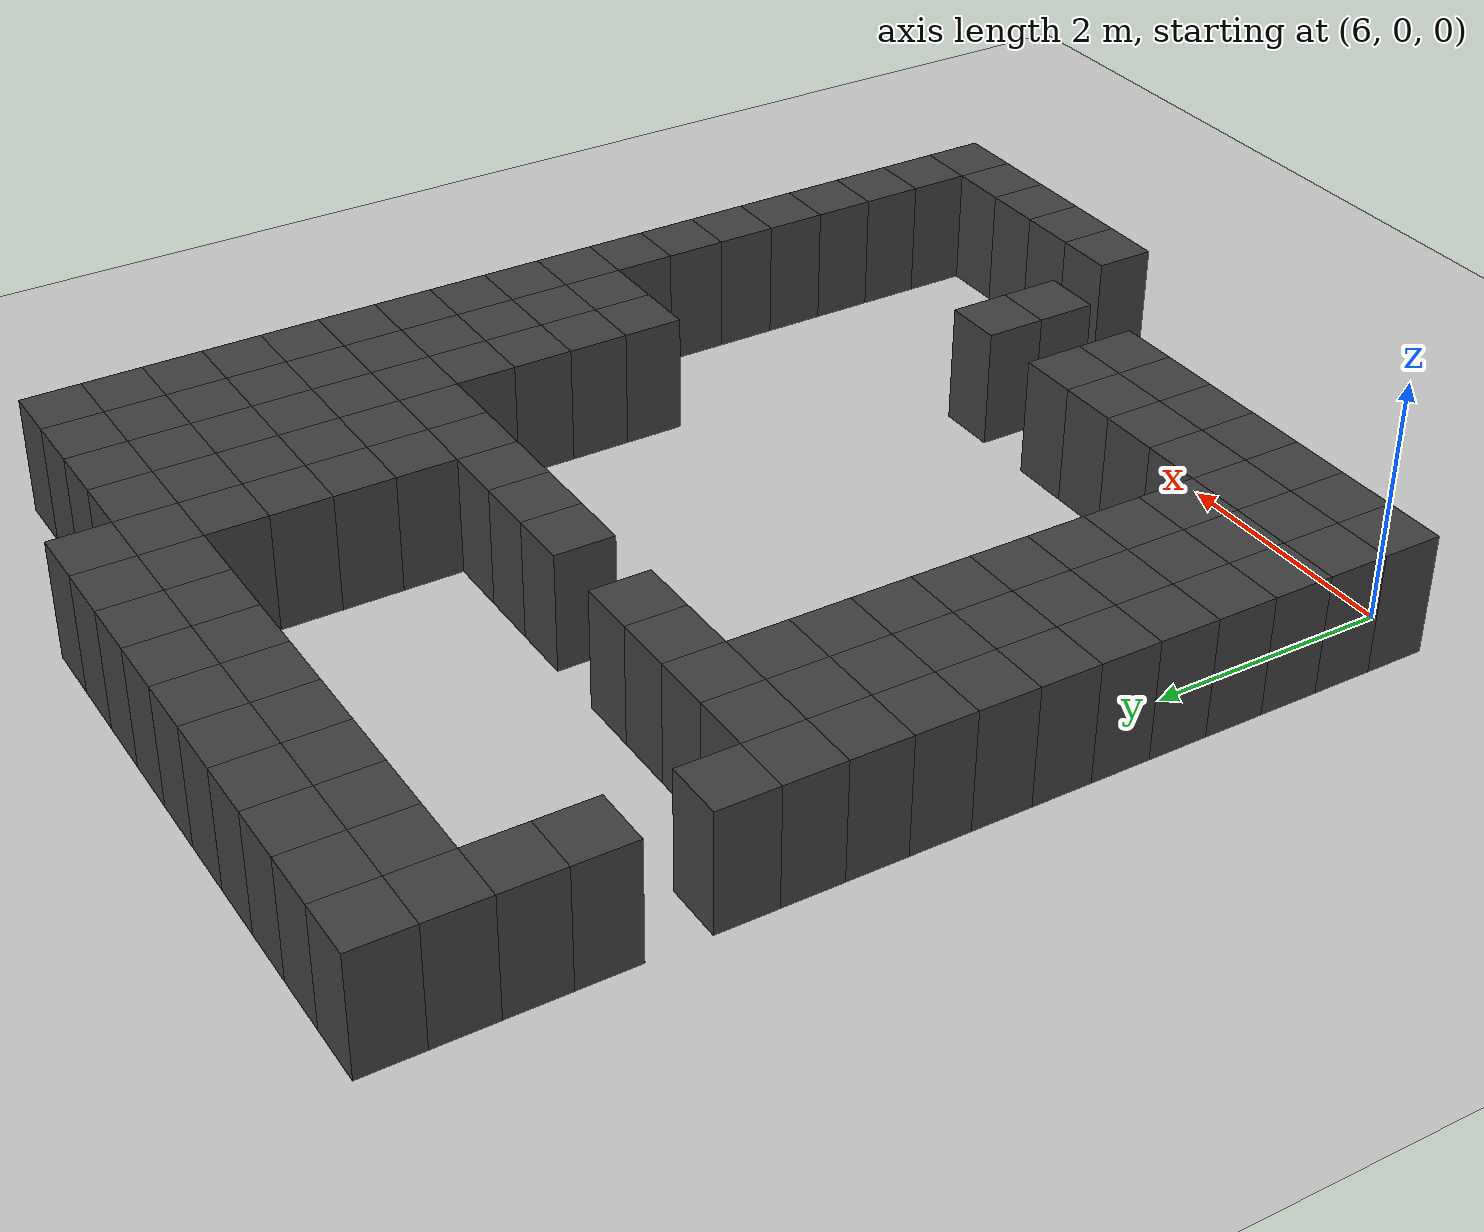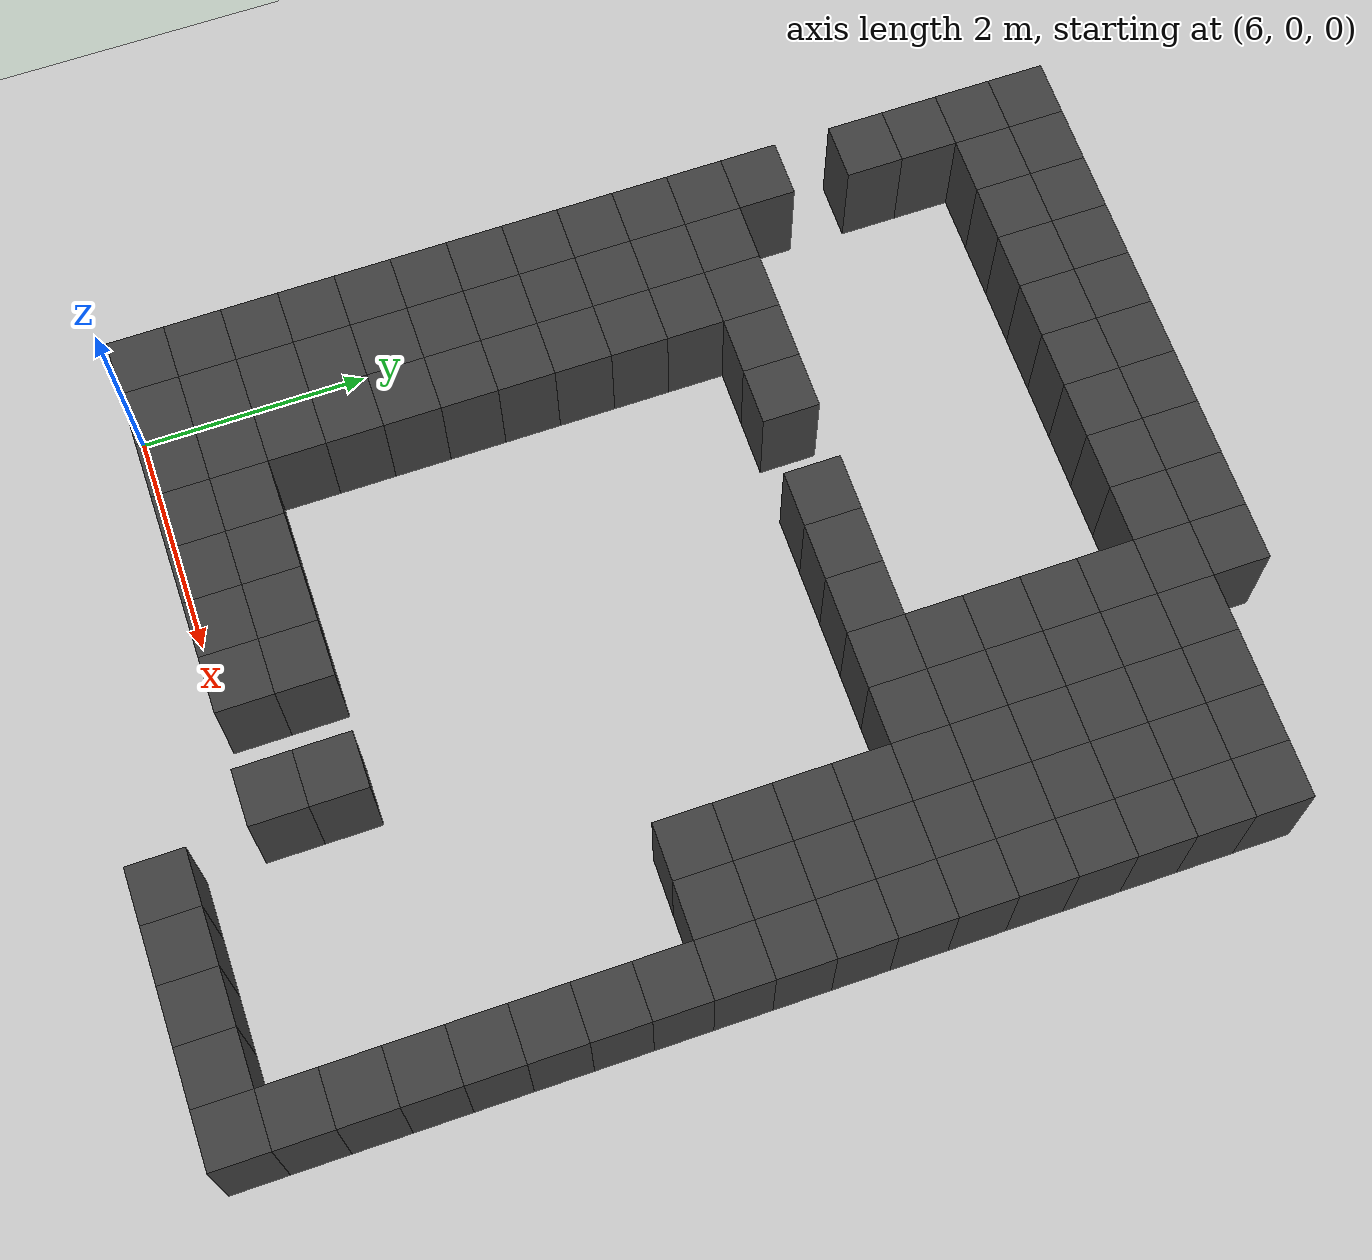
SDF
<sdf version="1.7">
 <world name="map_13364">
  <model name="ground_plane">
   <static>true</static>
   <link name="link">
    <collision name="collision">
     <geometry><plane><normal>0 0 1</normal><size>200 200</size></plane></geometry>
    </collision>
    <visual name="visual">
     <geometry><plane><normal>0 0 1</normal><size>200 200</size></plane></geometry>
     <material><ambient>0.8 0.8 0.8 1</ambient><diffuse>0.8 0.8 0.8 1</diffuse></material>
    </visual>
   </link>
  </model>
  <model name="maze_environment">
   <static>true</static>
   <link name="wall_397">
    <pose>5.750 8.250 0.500 0 0 0</pose>
    <collision name="col"><geometry><box><size>0.5 0.5 1.0</size></box></geometry></collision>
    <visual name="vis">
     <geometry><box><size>0.5 0.5 1.0</size></box></geometry>
     <material><ambient>0.15 0.15 0.15 1</ambient><diffuse>0.25 0.25 0.25 1</diffuse></material>
    </visual>
   </link>
   <link name="wall_398">
    <pose>6.250 8.250 0.500 0 0 0</pose>
    <collision name="col"><geometry><box><size>0.5 0.5 1.0</size></box></geometry></collision>
    <visual name="vis">
     <geometry><box><size>0.5 0.5 1.0</size></box></geometry>
     <material><ambient>0.15 0.15 0.15 1</ambient><diffuse>0.25 0.25 0.25 1</diffuse></material>
    </visual>
   </link>
   <link name="wall_399">
    <pose>6.750 8.250 0.500 0 0 0</pose>
    <collision name="col"><geometry><box><size>0.5 0.5 1.0</size></box></geometry></collision>
    <visual name="vis">
     <geometry><box><size>0.5 0.5 1.0</size></box></geometry>
     <material><ambient>0.15 0.15 0.15 1</ambient><diffuse>0.25 0.25 0.25 1</diffuse></material>
    </visual>
   </link>
   <link name="wall_400">
    <pose>7.250 8.250 0.500 0 0 0</pose>
    <collision name="col"><geometry><box><size>0.5 0.5 1.0</size></box></geometry></collision>
    <visual name="vis">
     <geometry><box><size>0.5 0.5 1.0</size></box></geometry>
     <material><ambient>0.15 0.15 0.15 1</ambient><diffuse>0.25 0.25 0.25 1</diffuse></material>
    </visual>
   </link>
   <link name="wall_401">
    <pose>7.750 8.250 0.500 0 0 0</pose>
    <collision name="col"><geometry><box><size>0.5 0.5 1.0</size></box></geometry></collision>
    <visual name="vis">
     <geometry><box><size>0.5 0.5 1.0</size></box></geometry>
     <material><ambient>0.15 0.15 0.15 1</ambient><diffuse>0.25 0.25 0.25 1</diffuse></material>
    </visual>
   </link>
   <link name="wall_402">
    <pose>8.250 8.250 0.500 0 0 0</pose>
    <collision name="col"><geometry><box><size>0.5 0.5 1.0</size></box></geometry></collision>
    <visual name="vis">
     <geometry><box><size>0.5 0.5 1.0</size></box></geometry>
     <material><ambient>0.15 0.15 0.15 1</ambient><diffuse>0.25 0.25 0.25 1</diffuse></material>
    </visual>
   </link>
   <link name="wall_403">
    <pose>8.750 8.250 0.500 0 0 0</pose>
    <collision name="col"><geometry><box><size>0.5 0.5 1.0</size></box></geometry></collision>
    <visual name="vis">
     <geometry><box><size>0.5 0.5 1.0</size></box></geometry>
     <material><ambient>0.15 0.15 0.15 1</ambient><diffuse>0.25 0.25 0.25 1</diffuse></material>
    </visual>
   </link>
   <link name="wall_404">
    <pose>9.250 8.250 0.500 0 0 0</pose>
    <collision name="col"><geometry><box><size>0.5 0.5 1.0</size></box></geometry></collision>
    <visual name="vis">
     <geometry><box><size>0.5 0.5 1.0</size></box></geometry>
     <material><ambient>0.15 0.15 0.15 1</ambient><diffuse>0.25 0.25 0.25 1</diffuse></material>
    </visual>
   </link>
   <link name="wall_405">
    <pose>9.750 8.250 0.500 0 0 0</pose>
    <collision name="col"><geometry><box><size>0.5 0.5 1.0</size></box></geometry></collision>
    <visual name="vis">
     <geometry><box><size>0.5 0.5 1.0</size></box></geometry>
     <material><ambient>0.15 0.15 0.15 1</ambient><diffuse>0.25 0.25 0.25 1</diffuse></material>
    </visual>
   </link>
   <link name="wall_406">
    <pose>10.250 8.250 0.500 0 0 0</pose>
    <collision name="col"><geometry><box><size>0.5 0.5 1.0</size></box></geometry></collision>
    <visual name="vis">
     <geometry><box><size>0.5 0.5 1.0</size></box></geometry>
     <material><ambient>0.15 0.15 0.15 1</ambient><diffuse>0.25 0.25 0.25 1</diffuse></material>
    </visual>
   </link>
   <link name="wall_446">
    <pose>5.750 7.750 0.500 0 0 0</pose>
    <collision name="col"><geometry><box><size>0.5 0.5 1.0</size></box></geometry></collision>
    <visual name="vis">
     <geometry><box><size>0.5 0.5 1.0</size></box></geometry>
     <material><ambient>0.15 0.15 0.15 1</ambient><diffuse>0.25 0.25 0.25 1</diffuse></material>
    </visual>
   </link>
   <link name="wall_447">
    <pose>6.250 7.750 0.500 0 0 0</pose>
    <collision name="col"><geometry><box><size>0.5 0.5 1.0</size></box></geometry></collision>
    <visual name="vis">
     <geometry><box><size>0.5 0.5 1.0</size></box></geometry>
     <material><ambient>0.15 0.15 0.15 1</ambient><diffuse>0.25 0.25 0.25 1</diffuse></material>
    </visual>
   </link>
   <link name="wall_448">
    <pose>6.750 7.750 0.500 0 0 0</pose>
    <collision name="col"><geometry><box><size>0.5 0.5 1.0</size></box></geometry></collision>
    <visual name="vis">
     <geometry><box><size>0.5 0.5 1.0</size></box></geometry>
     <material><ambient>0.15 0.15 0.15 1</ambient><diffuse>0.25 0.25 0.25 1</diffuse></material>
    </visual>
   </link>
   <link name="wall_449">
    <pose>7.250 7.750 0.500 0 0 0</pose>
    <collision name="col"><geometry><box><size>0.5 0.5 1.0</size></box></geometry></collision>
    <visual name="vis">
     <geometry><box><size>0.5 0.5 1.0</size></box></geometry>
     <material><ambient>0.15 0.15 0.15 1</ambient><diffuse>0.25 0.25 0.25 1</diffuse></material>
    </visual>
   </link>
   <link name="wall_450">
    <pose>7.750 7.750 0.500 0 0 0</pose>
    <collision name="col"><geometry><box><size>0.5 0.5 1.0</size></box></geometry></collision>
    <visual name="vis">
     <geometry><box><size>0.5 0.5 1.0</size></box></geometry>
     <material><ambient>0.15 0.15 0.15 1</ambient><diffuse>0.25 0.25 0.25 1</diffuse></material>
    </visual>
   </link>
   <link name="wall_451">
    <pose>8.250 7.750 0.500 0 0 0</pose>
    <collision name="col"><geometry><box><size>0.5 0.5 1.0</size></box></geometry></collision>
    <visual name="vis">
     <geometry><box><size>0.5 0.5 1.0</size></box></geometry>
     <material><ambient>0.15 0.15 0.15 1</ambient><diffuse>0.25 0.25 0.25 1</diffuse></material>
    </visual>
   </link>
   <link name="wall_452">
    <pose>8.750 7.750 0.500 0 0 0</pose>
    <collision name="col"><geometry><box><size>0.5 0.5 1.0</size></box></geometry></collision>
    <visual name="vis">
     <geometry><box><size>0.5 0.5 1.0</size></box></geometry>
     <material><ambient>0.15 0.15 0.15 1</ambient><diffuse>0.25 0.25 0.25 1</diffuse></material>
    </visual>
   </link>
   <link name="wall_453">
    <pose>9.250 7.750 0.500 0 0 0</pose>
    <collision name="col"><geometry><box><size>0.5 0.5 1.0</size></box></geometry></collision>
    <visual name="vis">
     <geometry><box><size>0.5 0.5 1.0</size></box></geometry>
     <material><ambient>0.15 0.15 0.15 1</ambient><diffuse>0.25 0.25 0.25 1</diffuse></material>
    </visual>
   </link>
   <link name="wall_454">
    <pose>9.750 7.750 0.500 0 0 0</pose>
    <collision name="col"><geometry><box><size>0.5 0.5 1.0</size></box></geometry></collision>
    <visual name="vis">
     <geometry><box><size>0.5 0.5 1.0</size></box></geometry>
     <material><ambient>0.15 0.15 0.15 1</ambient><diffuse>0.25 0.25 0.25 1</diffuse></material>
    </visual>
   </link>
   <link name="wall_455">
    <pose>10.250 7.750 0.500 0 0 0</pose>
    <collision name="col"><geometry><box><size>0.5 0.5 1.0</size></box></geometry></collision>
    <visual name="vis">
     <geometry><box><size>0.5 0.5 1.0</size></box></geometry>
     <material><ambient>0.15 0.15 0.15 1</ambient><diffuse>0.25 0.25 0.25 1</diffuse></material>
    </visual>
   </link>
   <link name="wall_456">
    <pose>10.750 7.750 0.500 0 0 0</pose>
    <collision name="col"><geometry><box><size>0.5 0.5 1.0</size></box></geometry></collision>
    <visual name="vis">
     <geometry><box><size>0.5 0.5 1.0</size></box></geometry>
     <material><ambient>0.15 0.15 0.15 1</ambient><diffuse>0.25 0.25 0.25 1</diffuse></material>
    </visual>
   </link>
   <link name="wall_457">
    <pose>11.250 7.750 0.500 0 0 0</pose>
    <collision name="col"><geometry><box><size>0.5 0.5 1.0</size></box></geometry></collision>
    <visual name="vis">
     <geometry><box><size>0.5 0.5 1.0</size></box></geometry>
     <material><ambient>0.15 0.15 0.15 1</ambient><diffuse>0.25 0.25 0.25 1</diffuse></material>
    </visual>
   </link>
   <link name="wall_458">
    <pose>11.750 7.750 0.500 0 0 0</pose>
    <collision name="col"><geometry><box><size>0.5 0.5 1.0</size></box></geometry></collision>
    <visual name="vis">
     <geometry><box><size>0.5 0.5 1.0</size></box></geometry>
     <material><ambient>0.15 0.15 0.15 1</ambient><diffuse>0.25 0.25 0.25 1</diffuse></material>
    </visual>
   </link>
   <link name="wall_459">
    <pose>12.250 7.750 0.500 0 0 0</pose>
    <collision name="col"><geometry><box><size>0.5 0.5 1.0</size></box></geometry></collision>
    <visual name="vis">
     <geometry><box><size>0.5 0.5 1.0</size></box></geometry>
     <material><ambient>0.15 0.15 0.15 1</ambient><diffuse>0.25 0.25 0.25 1</diffuse></material>
    </visual>
   </link>
   <link name="wall_495">
    <pose>5.750 7.250 0.500 0 0 0</pose>
    <collision name="col"><geometry><box><size>0.5 0.5 1.0</size></box></geometry></collision>
    <visual name="vis">
     <geometry><box><size>0.5 0.5 1.0</size></box></geometry>
     <material><ambient>0.15 0.15 0.15 1</ambient><diffuse>0.25 0.25 0.25 1</diffuse></material>
    </visual>
   </link>
   <link name="wall_496">
    <pose>10.250 7.250 0.500 0 0 0</pose>
    <collision name="col"><geometry><box><size>0.5 0.5 1.0</size></box></geometry></collision>
    <visual name="vis">
     <geometry><box><size>0.5 0.5 1.0</size></box></geometry>
     <material><ambient>0.15 0.15 0.15 1</ambient><diffuse>0.25 0.25 0.25 1</diffuse></material>
    </visual>
   </link>
   <link name="wall_497">
    <pose>10.750 7.250 0.500 0 0 0</pose>
    <collision name="col"><geometry><box><size>0.5 0.5 1.0</size></box></geometry></collision>
    <visual name="vis">
     <geometry><box><size>0.5 0.5 1.0</size></box></geometry>
     <material><ambient>0.15 0.15 0.15 1</ambient><diffuse>0.25 0.25 0.25 1</diffuse></material>
    </visual>
   </link>
   <link name="wall_498">
    <pose>11.250 7.250 0.500 0 0 0</pose>
    <collision name="col"><geometry><box><size>0.5 0.5 1.0</size></box></geometry></collision>
    <visual name="vis">
     <geometry><box><size>0.5 0.5 1.0</size></box></geometry>
     <material><ambient>0.15 0.15 0.15 1</ambient><diffuse>0.25 0.25 0.25 1</diffuse></material>
    </visual>
   </link>
   <link name="wall_499">
    <pose>11.750 7.250 0.500 0 0 0</pose>
    <collision name="col"><geometry><box><size>0.5 0.5 1.0</size></box></geometry></collision>
    <visual name="vis">
     <geometry><box><size>0.5 0.5 1.0</size></box></geometry>
     <material><ambient>0.15 0.15 0.15 1</ambient><diffuse>0.25 0.25 0.25 1</diffuse></material>
    </visual>
   </link>
   <link name="wall_500">
    <pose>12.250 7.250 0.500 0 0 0</pose>
    <collision name="col"><geometry><box><size>0.5 0.5 1.0</size></box></geometry></collision>
    <visual name="vis">
     <geometry><box><size>0.5 0.5 1.0</size></box></geometry>
     <material><ambient>0.15 0.15 0.15 1</ambient><diffuse>0.25 0.25 0.25 1</diffuse></material>
    </visual>
   </link>
   <link name="wall_530">
    <pose>5.750 6.750 0.500 0 0 0</pose>
    <collision name="col"><geometry><box><size>0.5 0.5 1.0</size></box></geometry></collision>
    <visual name="vis">
     <geometry><box><size>0.5 0.5 1.0</size></box></geometry>
     <material><ambient>0.15 0.15 0.15 1</ambient><diffuse>0.25 0.25 0.25 1</diffuse></material>
    </visual>
   </link>
   <link name="wall_531">
    <pose>10.250 6.750 0.500 0 0 0</pose>
    <collision name="col"><geometry><box><size>0.5 0.5 1.0</size></box></geometry></collision>
    <visual name="vis">
     <geometry><box><size>0.5 0.5 1.0</size></box></geometry>
     <material><ambient>0.15 0.15 0.15 1</ambient><diffuse>0.25 0.25 0.25 1</diffuse></material>
    </visual>
   </link>
   <link name="wall_532">
    <pose>10.750 6.750 0.500 0 0 0</pose>
    <collision name="col"><geometry><box><size>0.5 0.5 1.0</size></box></geometry></collision>
    <visual name="vis">
     <geometry><box><size>0.5 0.5 1.0</size></box></geometry>
     <material><ambient>0.15 0.15 0.15 1</ambient><diffuse>0.25 0.25 0.25 1</diffuse></material>
    </visual>
   </link>
   <link name="wall_533">
    <pose>11.250 6.750 0.500 0 0 0</pose>
    <collision name="col"><geometry><box><size>0.5 0.5 1.0</size></box></geometry></collision>
    <visual name="vis">
     <geometry><box><size>0.5 0.5 1.0</size></box></geometry>
     <material><ambient>0.15 0.15 0.15 1</ambient><diffuse>0.25 0.25 0.25 1</diffuse></material>
    </visual>
   </link>
   <link name="wall_534">
    <pose>11.750 6.750 0.500 0 0 0</pose>
    <collision name="col"><geometry><box><size>0.5 0.5 1.0</size></box></geometry></collision>
    <visual name="vis">
     <geometry><box><size>0.5 0.5 1.0</size></box></geometry>
     <material><ambient>0.15 0.15 0.15 1</ambient><diffuse>0.25 0.25 0.25 1</diffuse></material>
    </visual>
   </link>
   <link name="wall_535">
    <pose>12.250 6.750 0.500 0 0 0</pose>
    <collision name="col"><geometry><box><size>0.5 0.5 1.0</size></box></geometry></collision>
    <visual name="vis">
     <geometry><box><size>0.5 0.5 1.0</size></box></geometry>
     <material><ambient>0.15 0.15 0.15 1</ambient><diffuse>0.25 0.25 0.25 1</diffuse></material>
    </visual>
   </link>
   <link name="wall_563">
    <pose>10.250 6.250 0.500 0 0 0</pose>
    <collision name="col"><geometry><box><size>0.5 0.5 1.0</size></box></geometry></collision>
    <visual name="vis">
     <geometry><box><size>0.5 0.5 1.0</size></box></geometry>
     <material><ambient>0.15 0.15 0.15 1</ambient><diffuse>0.25 0.25 0.25 1</diffuse></material>
    </visual>
   </link>
   <link name="wall_564">
    <pose>10.750 6.250 0.500 0 0 0</pose>
    <collision name="col"><geometry><box><size>0.5 0.5 1.0</size></box></geometry></collision>
    <visual name="vis">
     <geometry><box><size>0.5 0.5 1.0</size></box></geometry>
     <material><ambient>0.15 0.15 0.15 1</ambient><diffuse>0.25 0.25 0.25 1</diffuse></material>
    </visual>
   </link>
   <link name="wall_565">
    <pose>11.250 6.250 0.500 0 0 0</pose>
    <collision name="col"><geometry><box><size>0.5 0.5 1.0</size></box></geometry></collision>
    <visual name="vis">
     <geometry><box><size>0.5 0.5 1.0</size></box></geometry>
     <material><ambient>0.15 0.15 0.15 1</ambient><diffuse>0.25 0.25 0.25 1</diffuse></material>
    </visual>
   </link>
   <link name="wall_566">
    <pose>11.750 6.250 0.500 0 0 0</pose>
    <collision name="col"><geometry><box><size>0.5 0.5 1.0</size></box></geometry></collision>
    <visual name="vis">
     <geometry><box><size>0.5 0.5 1.0</size></box></geometry>
     <material><ambient>0.15 0.15 0.15 1</ambient><diffuse>0.25 0.25 0.25 1</diffuse></material>
    </visual>
   </link>
   <link name="wall_567">
    <pose>12.250 6.250 0.500 0 0 0</pose>
    <collision name="col"><geometry><box><size>0.5 0.5 1.0</size></box></geometry></collision>
    <visual name="vis">
     <geometry><box><size>0.5 0.5 1.0</size></box></geometry>
     <material><ambient>0.15 0.15 0.15 1</ambient><diffuse>0.25 0.25 0.25 1</diffuse></material>
    </visual>
   </link>
   <link name="wall_589">
    <pose>5.750 5.750 0.500 0 0 0</pose>
    <collision name="col"><geometry><box><size>0.5 0.5 1.0</size></box></geometry></collision>
    <visual name="vis">
     <geometry><box><size>0.5 0.5 1.0</size></box></geometry>
     <material><ambient>0.15 0.15 0.15 1</ambient><diffuse>0.25 0.25 0.25 1</diffuse></material>
    </visual>
   </link>
   <link name="wall_590">
    <pose>10.250 5.750 0.500 0 0 0</pose>
    <collision name="col"><geometry><box><size>0.5 0.5 1.0</size></box></geometry></collision>
    <visual name="vis">
     <geometry><box><size>0.5 0.5 1.0</size></box></geometry>
     <material><ambient>0.15 0.15 0.15 1</ambient><diffuse>0.25 0.25 0.25 1</diffuse></material>
    </visual>
   </link>
   <link name="wall_591">
    <pose>10.750 5.750 0.500 0 0 0</pose>
    <collision name="col"><geometry><box><size>0.5 0.5 1.0</size></box></geometry></collision>
    <visual name="vis">
     <geometry><box><size>0.5 0.5 1.0</size></box></geometry>
     <material><ambient>0.15 0.15 0.15 1</ambient><diffuse>0.25 0.25 0.25 1</diffuse></material>
    </visual>
   </link>
   <link name="wall_592">
    <pose>11.250 5.750 0.500 0 0 0</pose>
    <collision name="col"><geometry><box><size>0.5 0.5 1.0</size></box></geometry></collision>
    <visual name="vis">
     <geometry><box><size>0.5 0.5 1.0</size></box></geometry>
     <material><ambient>0.15 0.15 0.15 1</ambient><diffuse>0.25 0.25 0.25 1</diffuse></material>
    </visual>
   </link>
   <link name="wall_593">
    <pose>11.750 5.750 0.500 0 0 0</pose>
    <collision name="col"><geometry><box><size>0.5 0.5 1.0</size></box></geometry></collision>
    <visual name="vis">
     <geometry><box><size>0.5 0.5 1.0</size></box></geometry>
     <material><ambient>0.15 0.15 0.15 1</ambient><diffuse>0.25 0.25 0.25 1</diffuse></material>
    </visual>
   </link>
   <link name="wall_594">
    <pose>12.250 5.750 0.500 0 0 0</pose>
    <collision name="col"><geometry><box><size>0.5 0.5 1.0</size></box></geometry></collision>
    <visual name="vis">
     <geometry><box><size>0.5 0.5 1.0</size></box></geometry>
     <material><ambient>0.15 0.15 0.15 1</ambient><diffuse>0.25 0.25 0.25 1</diffuse></material>
    </visual>
   </link>
   <link name="wall_616">
    <pose>5.750 5.250 0.500 0 0 0</pose>
    <collision name="col"><geometry><box><size>0.5 0.5 1.0</size></box></geometry></collision>
    <visual name="vis">
     <geometry><box><size>0.5 0.5 1.0</size></box></geometry>
     <material><ambient>0.15 0.15 0.15 1</ambient><diffuse>0.25 0.25 0.25 1</diffuse></material>
    </visual>
   </link>
   <link name="wall_617">
    <pose>6.250 5.250 0.500 0 0 0</pose>
    <collision name="col"><geometry><box><size>0.5 0.5 1.0</size></box></geometry></collision>
    <visual name="vis">
     <geometry><box><size>0.5 0.5 1.0</size></box></geometry>
     <material><ambient>0.15 0.15 0.15 1</ambient><diffuse>0.25 0.25 0.25 1</diffuse></material>
    </visual>
   </link>
   <link name="wall_618">
    <pose>6.750 5.250 0.500 0 0 0</pose>
    <collision name="col"><geometry><box><size>0.5 0.5 1.0</size></box></geometry></collision>
    <visual name="vis">
     <geometry><box><size>0.5 0.5 1.0</size></box></geometry>
     <material><ambient>0.15 0.15 0.15 1</ambient><diffuse>0.25 0.25 0.25 1</diffuse></material>
    </visual>
   </link>
   <link name="wall_619">
    <pose>7.250 5.250 0.500 0 0 0</pose>
    <collision name="col"><geometry><box><size>0.5 0.5 1.0</size></box></geometry></collision>
    <visual name="vis">
     <geometry><box><size>0.5 0.5 1.0</size></box></geometry>
     <material><ambient>0.15 0.15 0.15 1</ambient><diffuse>0.25 0.25 0.25 1</diffuse></material>
    </visual>
   </link>
   <link name="wall_620">
    <pose>7.750 5.250 0.500 0 0 0</pose>
    <collision name="col"><geometry><box><size>0.5 0.5 1.0</size></box></geometry></collision>
    <visual name="vis">
     <geometry><box><size>0.5 0.5 1.0</size></box></geometry>
     <material><ambient>0.15 0.15 0.15 1</ambient><diffuse>0.25 0.25 0.25 1</diffuse></material>
    </visual>
   </link>
   <link name="wall_621">
    <pose>8.750 5.250 0.500 0 0 0</pose>
    <collision name="col"><geometry><box><size>0.5 0.5 1.0</size></box></geometry></collision>
    <visual name="vis">
     <geometry><box><size>0.5 0.5 1.0</size></box></geometry>
     <material><ambient>0.15 0.15 0.15 1</ambient><diffuse>0.25 0.25 0.25 1</diffuse></material>
    </visual>
   </link>
   <link name="wall_622">
    <pose>9.250 5.250 0.500 0 0 0</pose>
    <collision name="col"><geometry><box><size>0.5 0.5 1.0</size></box></geometry></collision>
    <visual name="vis">
     <geometry><box><size>0.5 0.5 1.0</size></box></geometry>
     <material><ambient>0.15 0.15 0.15 1</ambient><diffuse>0.25 0.25 0.25 1</diffuse></material>
    </visual>
   </link>
   <link name="wall_623">
    <pose>9.750 5.250 0.500 0 0 0</pose>
    <collision name="col"><geometry><box><size>0.5 0.5 1.0</size></box></geometry></collision>
    <visual name="vis">
     <geometry><box><size>0.5 0.5 1.0</size></box></geometry>
     <material><ambient>0.15 0.15 0.15 1</ambient><diffuse>0.25 0.25 0.25 1</diffuse></material>
    </visual>
   </link>
   <link name="wall_624">
    <pose>10.250 5.250 0.500 0 0 0</pose>
    <collision name="col"><geometry><box><size>0.5 0.5 1.0</size></box></geometry></collision>
    <visual name="vis">
     <geometry><box><size>0.5 0.5 1.0</size></box></geometry>
     <material><ambient>0.15 0.15 0.15 1</ambient><diffuse>0.25 0.25 0.25 1</diffuse></material>
    </visual>
   </link>
   <link name="wall_625">
    <pose>10.750 5.250 0.500 0 0 0</pose>
    <collision name="col"><geometry><box><size>0.5 0.5 1.0</size></box></geometry></collision>
    <visual name="vis">
     <geometry><box><size>0.5 0.5 1.0</size></box></geometry>
     <material><ambient>0.15 0.15 0.15 1</ambient><diffuse>0.25 0.25 0.25 1</diffuse></material>
    </visual>
   </link>
   <link name="wall_626">
    <pose>11.250 5.250 0.500 0 0 0</pose>
    <collision name="col"><geometry><box><size>0.5 0.5 1.0</size></box></geometry></collision>
    <visual name="vis">
     <geometry><box><size>0.5 0.5 1.0</size></box></geometry>
     <material><ambient>0.15 0.15 0.15 1</ambient><diffuse>0.25 0.25 0.25 1</diffuse></material>
    </visual>
   </link>
   <link name="wall_627">
    <pose>11.750 5.250 0.500 0 0 0</pose>
    <collision name="col"><geometry><box><size>0.5 0.5 1.0</size></box></geometry></collision>
    <visual name="vis">
     <geometry><box><size>0.5 0.5 1.0</size></box></geometry>
     <material><ambient>0.15 0.15 0.15 1</ambient><diffuse>0.25 0.25 0.25 1</diffuse></material>
    </visual>
   </link>
   <link name="wall_628">
    <pose>12.250 5.250 0.500 0 0 0</pose>
    <collision name="col"><geometry><box><size>0.5 0.5 1.0</size></box></geometry></collision>
    <visual name="vis">
     <geometry><box><size>0.5 0.5 1.0</size></box></geometry>
     <material><ambient>0.15 0.15 0.15 1</ambient><diffuse>0.25 0.25 0.25 1</diffuse></material>
    </visual>
   </link>
   <link name="wall_643">
    <pose>5.750 4.750 0.500 0 0 0</pose>
    <collision name="col"><geometry><box><size>0.5 0.5 1.0</size></box></geometry></collision>
    <visual name="vis">
     <geometry><box><size>0.5 0.5 1.0</size></box></geometry>
     <material><ambient>0.15 0.15 0.15 1</ambient><diffuse>0.25 0.25 0.25 1</diffuse></material>
    </visual>
   </link>
   <link name="wall_644">
    <pose>6.250 4.750 0.500 0 0 0</pose>
    <collision name="col"><geometry><box><size>0.5 0.5 1.0</size></box></geometry></collision>
    <visual name="vis">
     <geometry><box><size>0.5 0.5 1.0</size></box></geometry>
     <material><ambient>0.15 0.15 0.15 1</ambient><diffuse>0.25 0.25 0.25 1</diffuse></material>
    </visual>
   </link>
   <link name="wall_645">
    <pose>6.750 4.750 0.500 0 0 0</pose>
    <collision name="col"><geometry><box><size>0.5 0.5 1.0</size></box></geometry></collision>
    <visual name="vis">
     <geometry><box><size>0.5 0.5 1.0</size></box></geometry>
     <material><ambient>0.15 0.15 0.15 1</ambient><diffuse>0.25 0.25 0.25 1</diffuse></material>
    </visual>
   </link>
   <link name="wall_646">
    <pose>11.250 4.750 0.500 0 0 0</pose>
    <collision name="col"><geometry><box><size>0.5 0.5 1.0</size></box></geometry></collision>
    <visual name="vis">
     <geometry><box><size>0.5 0.5 1.0</size></box></geometry>
     <material><ambient>0.15 0.15 0.15 1</ambient><diffuse>0.25 0.25 0.25 1</diffuse></material>
    </visual>
   </link>
   <link name="wall_647">
    <pose>11.750 4.750 0.500 0 0 0</pose>
    <collision name="col"><geometry><box><size>0.5 0.5 1.0</size></box></geometry></collision>
    <visual name="vis">
     <geometry><box><size>0.5 0.5 1.0</size></box></geometry>
     <material><ambient>0.15 0.15 0.15 1</ambient><diffuse>0.25 0.25 0.25 1</diffuse></material>
    </visual>
   </link>
   <link name="wall_648">
    <pose>12.250 4.750 0.500 0 0 0</pose>
    <collision name="col"><geometry><box><size>0.5 0.5 1.0</size></box></geometry></collision>
    <visual name="vis">
     <geometry><box><size>0.5 0.5 1.0</size></box></geometry>
     <material><ambient>0.15 0.15 0.15 1</ambient><diffuse>0.25 0.25 0.25 1</diffuse></material>
    </visual>
   </link>
   <link name="wall_670">
    <pose>5.750 4.250 0.500 0 0 0</pose>
    <collision name="col"><geometry><box><size>0.5 0.5 1.0</size></box></geometry></collision>
    <visual name="vis">
     <geometry><box><size>0.5 0.5 1.0</size></box></geometry>
     <material><ambient>0.15 0.15 0.15 1</ambient><diffuse>0.25 0.25 0.25 1</diffuse></material>
    </visual>
   </link>
   <link name="wall_671">
    <pose>6.250 4.250 0.500 0 0 0</pose>
    <collision name="col"><geometry><box><size>0.5 0.5 1.0</size></box></geometry></collision>
    <visual name="vis">
     <geometry><box><size>0.5 0.5 1.0</size></box></geometry>
     <material><ambient>0.15 0.15 0.15 1</ambient><diffuse>0.25 0.25 0.25 1</diffuse></material>
    </visual>
   </link>
   <link name="wall_672">
    <pose>6.750 4.250 0.500 0 0 0</pose>
    <collision name="col"><geometry><box><size>0.5 0.5 1.0</size></box></geometry></collision>
    <visual name="vis">
     <geometry><box><size>0.5 0.5 1.0</size></box></geometry>
     <material><ambient>0.15 0.15 0.15 1</ambient><diffuse>0.25 0.25 0.25 1</diffuse></material>
    </visual>
   </link>
   <link name="wall_673">
    <pose>11.250 4.250 0.500 0 0 0</pose>
    <collision name="col"><geometry><box><size>0.5 0.5 1.0</size></box></geometry></collision>
    <visual name="vis">
     <geometry><box><size>0.5 0.5 1.0</size></box></geometry>
     <material><ambient>0.15 0.15 0.15 1</ambient><diffuse>0.25 0.25 0.25 1</diffuse></material>
    </visual>
   </link>
   <link name="wall_674">
    <pose>11.750 4.250 0.500 0 0 0</pose>
    <collision name="col"><geometry><box><size>0.5 0.5 1.0</size></box></geometry></collision>
    <visual name="vis">
     <geometry><box><size>0.5 0.5 1.0</size></box></geometry>
     <material><ambient>0.15 0.15 0.15 1</ambient><diffuse>0.25 0.25 0.25 1</diffuse></material>
    </visual>
   </link>
   <link name="wall_675">
    <pose>12.250 4.250 0.500 0 0 0</pose>
    <collision name="col"><geometry><box><size>0.5 0.5 1.0</size></box></geometry></collision>
    <visual name="vis">
     <geometry><box><size>0.5 0.5 1.0</size></box></geometry>
     <material><ambient>0.15 0.15 0.15 1</ambient><diffuse>0.25 0.25 0.25 1</diffuse></material>
    </visual>
   </link>
   <link name="wall_702">
    <pose>5.750 3.750 0.500 0 0 0</pose>
    <collision name="col"><geometry><box><size>0.5 0.5 1.0</size></box></geometry></collision>
    <visual name="vis">
     <geometry><box><size>0.5 0.5 1.0</size></box></geometry>
     <material><ambient>0.15 0.15 0.15 1</ambient><diffuse>0.25 0.25 0.25 1</diffuse></material>
    </visual>
   </link>
   <link name="wall_703">
    <pose>6.250 3.750 0.500 0 0 0</pose>
    <collision name="col"><geometry><box><size>0.5 0.5 1.0</size></box></geometry></collision>
    <visual name="vis">
     <geometry><box><size>0.5 0.5 1.0</size></box></geometry>
     <material><ambient>0.15 0.15 0.15 1</ambient><diffuse>0.25 0.25 0.25 1</diffuse></material>
    </visual>
   </link>
   <link name="wall_704">
    <pose>6.750 3.750 0.500 0 0 0</pose>
    <collision name="col"><geometry><box><size>0.5 0.5 1.0</size></box></geometry></collision>
    <visual name="vis">
     <geometry><box><size>0.5 0.5 1.0</size></box></geometry>
     <material><ambient>0.15 0.15 0.15 1</ambient><diffuse>0.25 0.25 0.25 1</diffuse></material>
    </visual>
   </link>
   <link name="wall_705">
    <pose>11.250 3.750 0.500 0 0 0</pose>
    <collision name="col"><geometry><box><size>0.5 0.5 1.0</size></box></geometry></collision>
    <visual name="vis">
     <geometry><box><size>0.5 0.5 1.0</size></box></geometry>
     <material><ambient>0.15 0.15 0.15 1</ambient><diffuse>0.25 0.25 0.25 1</diffuse></material>
    </visual>
   </link>
   <link name="wall_706">
    <pose>11.750 3.750 0.500 0 0 0</pose>
    <collision name="col"><geometry><box><size>0.5 0.5 1.0</size></box></geometry></collision>
    <visual name="vis">
     <geometry><box><size>0.5 0.5 1.0</size></box></geometry>
     <material><ambient>0.15 0.15 0.15 1</ambient><diffuse>0.25 0.25 0.25 1</diffuse></material>
    </visual>
   </link>
   <link name="wall_707">
    <pose>12.250 3.750 0.500 0 0 0</pose>
    <collision name="col"><geometry><box><size>0.5 0.5 1.0</size></box></geometry></collision>
    <visual name="vis">
     <geometry><box><size>0.5 0.5 1.0</size></box></geometry>
     <material><ambient>0.15 0.15 0.15 1</ambient><diffuse>0.25 0.25 0.25 1</diffuse></material>
    </visual>
   </link>
   <link name="wall_735">
    <pose>5.750 3.250 0.500 0 0 0</pose>
    <collision name="col"><geometry><box><size>0.5 0.5 1.0</size></box></geometry></collision>
    <visual name="vis">
     <geometry><box><size>0.5 0.5 1.0</size></box></geometry>
     <material><ambient>0.15 0.15 0.15 1</ambient><diffuse>0.25 0.25 0.25 1</diffuse></material>
    </visual>
   </link>
   <link name="wall_736">
    <pose>6.250 3.250 0.500 0 0 0</pose>
    <collision name="col"><geometry><box><size>0.5 0.5 1.0</size></box></geometry></collision>
    <visual name="vis">
     <geometry><box><size>0.5 0.5 1.0</size></box></geometry>
     <material><ambient>0.15 0.15 0.15 1</ambient><diffuse>0.25 0.25 0.25 1</diffuse></material>
    </visual>
   </link>
   <link name="wall_737">
    <pose>6.750 3.250 0.500 0 0 0</pose>
    <collision name="col"><geometry><box><size>0.5 0.5 1.0</size></box></geometry></collision>
    <visual name="vis">
     <geometry><box><size>0.5 0.5 1.0</size></box></geometry>
     <material><ambient>0.15 0.15 0.15 1</ambient><diffuse>0.25 0.25 0.25 1</diffuse></material>
    </visual>
   </link>
   <link name="wall_738">
    <pose>11.250 3.250 0.500 0 0 0</pose>
    <collision name="col"><geometry><box><size>0.5 0.5 1.0</size></box></geometry></collision>
    <visual name="vis">
     <geometry><box><size>0.5 0.5 1.0</size></box></geometry>
     <material><ambient>0.15 0.15 0.15 1</ambient><diffuse>0.25 0.25 0.25 1</diffuse></material>
    </visual>
   </link>
   <link name="wall_739">
    <pose>11.750 3.250 0.500 0 0 0</pose>
    <collision name="col"><geometry><box><size>0.5 0.5 1.0</size></box></geometry></collision>
    <visual name="vis">
     <geometry><box><size>0.5 0.5 1.0</size></box></geometry>
     <material><ambient>0.15 0.15 0.15 1</ambient><diffuse>0.25 0.25 0.25 1</diffuse></material>
    </visual>
   </link>
   <link name="wall_740">
    <pose>12.250 3.250 0.500 0 0 0</pose>
    <collision name="col"><geometry><box><size>0.5 0.5 1.0</size></box></geometry></collision>
    <visual name="vis">
     <geometry><box><size>0.5 0.5 1.0</size></box></geometry>
     <material><ambient>0.15 0.15 0.15 1</ambient><diffuse>0.25 0.25 0.25 1</diffuse></material>
    </visual>
   </link>
   <link name="wall_768">
    <pose>5.750 2.750 0.500 0 0 0</pose>
    <collision name="col"><geometry><box><size>0.5 0.5 1.0</size></box></geometry></collision>
    <visual name="vis">
     <geometry><box><size>0.5 0.5 1.0</size></box></geometry>
     <material><ambient>0.15 0.15 0.15 1</ambient><diffuse>0.25 0.25 0.25 1</diffuse></material>
    </visual>
   </link>
   <link name="wall_769">
    <pose>6.250 2.750 0.500 0 0 0</pose>
    <collision name="col"><geometry><box><size>0.5 0.5 1.0</size></box></geometry></collision>
    <visual name="vis">
     <geometry><box><size>0.5 0.5 1.0</size></box></geometry>
     <material><ambient>0.15 0.15 0.15 1</ambient><diffuse>0.25 0.25 0.25 1</diffuse></material>
    </visual>
   </link>
   <link name="wall_770">
    <pose>6.750 2.750 0.500 0 0 0</pose>
    <collision name="col"><geometry><box><size>0.5 0.5 1.0</size></box></geometry></collision>
    <visual name="vis">
     <geometry><box><size>0.5 0.5 1.0</size></box></geometry>
     <material><ambient>0.15 0.15 0.15 1</ambient><diffuse>0.25 0.25 0.25 1</diffuse></material>
    </visual>
   </link>
   <link name="wall_771">
    <pose>12.250 2.750 0.500 0 0 0</pose>
    <collision name="col"><geometry><box><size>0.5 0.5 1.0</size></box></geometry></collision>
    <visual name="vis">
     <geometry><box><size>0.5 0.5 1.0</size></box></geometry>
     <material><ambient>0.15 0.15 0.15 1</ambient><diffuse>0.25 0.25 0.25 1</diffuse></material>
    </visual>
   </link>
   <link name="wall_799">
    <pose>5.750 2.250 0.500 0 0 0</pose>
    <collision name="col"><geometry><box><size>0.5 0.5 1.0</size></box></geometry></collision>
    <visual name="vis">
     <geometry><box><size>0.5 0.5 1.0</size></box></geometry>
     <material><ambient>0.15 0.15 0.15 1</ambient><diffuse>0.25 0.25 0.25 1</diffuse></material>
    </visual>
   </link>
   <link name="wall_800">
    <pose>6.250 2.250 0.500 0 0 0</pose>
    <collision name="col"><geometry><box><size>0.5 0.5 1.0</size></box></geometry></collision>
    <visual name="vis">
     <geometry><box><size>0.5 0.5 1.0</size></box></geometry>
     <material><ambient>0.15 0.15 0.15 1</ambient><diffuse>0.25 0.25 0.25 1</diffuse></material>
    </visual>
   </link>
   <link name="wall_801">
    <pose>6.750 2.250 0.500 0 0 0</pose>
    <collision name="col"><geometry><box><size>0.5 0.5 1.0</size></box></geometry></collision>
    <visual name="vis">
     <geometry><box><size>0.5 0.5 1.0</size></box></geometry>
     <material><ambient>0.15 0.15 0.15 1</ambient><diffuse>0.25 0.25 0.25 1</diffuse></material>
    </visual>
   </link>
   <link name="wall_802">
    <pose>12.250 2.250 0.500 0 0 0</pose>
    <collision name="col"><geometry><box><size>0.5 0.5 1.0</size></box></geometry></collision>
    <visual name="vis">
     <geometry><box><size>0.5 0.5 1.0</size></box></geometry>
     <material><ambient>0.15 0.15 0.15 1</ambient><diffuse>0.25 0.25 0.25 1</diffuse></material>
    </visual>
   </link>
   <link name="wall_830">
    <pose>5.750 1.750 0.500 0 0 0</pose>
    <collision name="col"><geometry><box><size>0.5 0.5 1.0</size></box></geometry></collision>
    <visual name="vis">
     <geometry><box><size>0.5 0.5 1.0</size></box></geometry>
     <material><ambient>0.15 0.15 0.15 1</ambient><diffuse>0.25 0.25 0.25 1</diffuse></material>
    </visual>
   </link>
   <link name="wall_831">
    <pose>6.250 1.750 0.500 0 0 0</pose>
    <collision name="col"><geometry><box><size>0.5 0.5 1.0</size></box></geometry></collision>
    <visual name="vis">
     <geometry><box><size>0.5 0.5 1.0</size></box></geometry>
     <material><ambient>0.15 0.15 0.15 1</ambient><diffuse>0.25 0.25 0.25 1</diffuse></material>
    </visual>
   </link>
   <link name="wall_832">
    <pose>6.750 1.750 0.500 0 0 0</pose>
    <collision name="col"><geometry><box><size>0.5 0.5 1.0</size></box></geometry></collision>
    <visual name="vis">
     <geometry><box><size>0.5 0.5 1.0</size></box></geometry>
     <material><ambient>0.15 0.15 0.15 1</ambient><diffuse>0.25 0.25 0.25 1</diffuse></material>
    </visual>
   </link>
   <link name="wall_833">
    <pose>12.250 1.750 0.500 0 0 0</pose>
    <collision name="col"><geometry><box><size>0.5 0.5 1.0</size></box></geometry></collision>
    <visual name="vis">
     <geometry><box><size>0.5 0.5 1.0</size></box></geometry>
     <material><ambient>0.15 0.15 0.15 1</ambient><diffuse>0.25 0.25 0.25 1</diffuse></material>
    </visual>
   </link>
   <link name="wall_852">
    <pose>5.750 1.250 0.500 0 0 0</pose>
    <collision name="col"><geometry><box><size>0.5 0.5 1.0</size></box></geometry></collision>
    <visual name="vis">
     <geometry><box><size>0.5 0.5 1.0</size></box></geometry>
     <material><ambient>0.15 0.15 0.15 1</ambient><diffuse>0.25 0.25 0.25 1</diffuse></material>
    </visual>
   </link>
   <link name="wall_853">
    <pose>6.250 1.250 0.500 0 0 0</pose>
    <collision name="col"><geometry><box><size>0.5 0.5 1.0</size></box></geometry></collision>
    <visual name="vis">
     <geometry><box><size>0.5 0.5 1.0</size></box></geometry>
     <material><ambient>0.15 0.15 0.15 1</ambient><diffuse>0.25 0.25 0.25 1</diffuse></material>
    </visual>
   </link>
   <link name="wall_854">
    <pose>6.750 1.250 0.500 0 0 0</pose>
    <collision name="col"><geometry><box><size>0.5 0.5 1.0</size></box></geometry></collision>
    <visual name="vis">
     <geometry><box><size>0.5 0.5 1.0</size></box></geometry>
     <material><ambient>0.15 0.15 0.15 1</ambient><diffuse>0.25 0.25 0.25 1</diffuse></material>
    </visual>
   </link>
   <link name="wall_855">
    <pose>12.250 1.250 0.500 0 0 0</pose>
    <collision name="col"><geometry><box><size>0.5 0.5 1.0</size></box></geometry></collision>
    <visual name="vis">
     <geometry><box><size>0.5 0.5 1.0</size></box></geometry>
     <material><ambient>0.15 0.15 0.15 1</ambient><diffuse>0.25 0.25 0.25 1</diffuse></material>
    </visual>
   </link>
   <link name="wall_875">
    <pose>5.750 0.750 0.500 0 0 0</pose>
    <collision name="col"><geometry><box><size>0.5 0.5 1.0</size></box></geometry></collision>
    <visual name="vis">
     <geometry><box><size>0.5 0.5 1.0</size></box></geometry>
     <material><ambient>0.15 0.15 0.15 1</ambient><diffuse>0.25 0.25 0.25 1</diffuse></material>
    </visual>
   </link>
   <link name="wall_876">
    <pose>6.250 0.750 0.500 0 0 0</pose>
    <collision name="col"><geometry><box><size>0.5 0.5 1.0</size></box></geometry></collision>
    <visual name="vis">
     <geometry><box><size>0.5 0.5 1.0</size></box></geometry>
     <material><ambient>0.15 0.15 0.15 1</ambient><diffuse>0.25 0.25 0.25 1</diffuse></material>
    </visual>
   </link>
   <link name="wall_877">
    <pose>6.750 0.750 0.500 0 0 0</pose>
    <collision name="col"><geometry><box><size>0.5 0.5 1.0</size></box></geometry></collision>
    <visual name="vis">
     <geometry><box><size>0.5 0.5 1.0</size></box></geometry>
     <material><ambient>0.15 0.15 0.15 1</ambient><diffuse>0.25 0.25 0.25 1</diffuse></material>
    </visual>
   </link>
   <link name="wall_878">
    <pose>7.250 0.750 0.500 0 0 0</pose>
    <collision name="col"><geometry><box><size>0.5 0.5 1.0</size></box></geometry></collision>
    <visual name="vis">
     <geometry><box><size>0.5 0.5 1.0</size></box></geometry>
     <material><ambient>0.15 0.15 0.15 1</ambient><diffuse>0.25 0.25 0.25 1</diffuse></material>
    </visual>
   </link>
   <link name="wall_879">
    <pose>7.750 0.750 0.500 0 0 0</pose>
    <collision name="col"><geometry><box><size>0.5 0.5 1.0</size></box></geometry></collision>
    <visual name="vis">
     <geometry><box><size>0.5 0.5 1.0</size></box></geometry>
     <material><ambient>0.15 0.15 0.15 1</ambient><diffuse>0.25 0.25 0.25 1</diffuse></material>
    </visual>
   </link>
   <link name="wall_880">
    <pose>8.250 0.750 0.500 0 0 0</pose>
    <collision name="col"><geometry><box><size>0.5 0.5 1.0</size></box></geometry></collision>
    <visual name="vis">
     <geometry><box><size>0.5 0.5 1.0</size></box></geometry>
     <material><ambient>0.15 0.15 0.15 1</ambient><diffuse>0.25 0.25 0.25 1</diffuse></material>
    </visual>
   </link>
   <link name="wall_881">
    <pose>8.750 0.750 0.500 0 0 0</pose>
    <collision name="col"><geometry><box><size>0.5 0.5 1.0</size></box></geometry></collision>
    <visual name="vis">
     <geometry><box><size>0.5 0.5 1.0</size></box></geometry>
     <material><ambient>0.15 0.15 0.15 1</ambient><diffuse>0.25 0.25 0.25 1</diffuse></material>
    </visual>
   </link>
   <link name="wall_882">
    <pose>9.750 0.750 0.500 0 0 0</pose>
    <collision name="col"><geometry><box><size>0.5 0.5 1.0</size></box></geometry></collision>
    <visual name="vis">
     <geometry><box><size>0.5 0.5 1.0</size></box></geometry>
     <material><ambient>0.15 0.15 0.15 1</ambient><diffuse>0.25 0.25 0.25 1</diffuse></material>
    </visual>
   </link>
   <link name="wall_883">
    <pose>12.250 0.750 0.500 0 0 0</pose>
    <collision name="col"><geometry><box><size>0.5 0.5 1.0</size></box></geometry></collision>
    <visual name="vis">
     <geometry><box><size>0.5 0.5 1.0</size></box></geometry>
     <material><ambient>0.15 0.15 0.15 1</ambient><diffuse>0.25 0.25 0.25 1</diffuse></material>
    </visual>
   </link>
   <link name="wall_903">
    <pose>5.750 0.250 0.500 0 0 0</pose>
    <collision name="col"><geometry><box><size>0.5 0.5 1.0</size></box></geometry></collision>
    <visual name="vis">
     <geometry><box><size>0.5 0.5 1.0</size></box></geometry>
     <material><ambient>0.15 0.15 0.15 1</ambient><diffuse>0.25 0.25 0.25 1</diffuse></material>
    </visual>
   </link>
   <link name="wall_904">
    <pose>6.250 0.250 0.500 0 0 0</pose>
    <collision name="col"><geometry><box><size>0.5 0.5 1.0</size></box></geometry></collision>
    <visual name="vis">
     <geometry><box><size>0.5 0.5 1.0</size></box></geometry>
     <material><ambient>0.15 0.15 0.15 1</ambient><diffuse>0.25 0.25 0.25 1</diffuse></material>
    </visual>
   </link>
   <link name="wall_905">
    <pose>6.750 0.250 0.500 0 0 0</pose>
    <collision name="col"><geometry><box><size>0.5 0.5 1.0</size></box></geometry></collision>
    <visual name="vis">
     <geometry><box><size>0.5 0.5 1.0</size></box></geometry>
     <material><ambient>0.15 0.15 0.15 1</ambient><diffuse>0.25 0.25 0.25 1</diffuse></material>
    </visual>
   </link>
   <link name="wall_906">
    <pose>7.250 0.250 0.500 0 0 0</pose>
    <collision name="col"><geometry><box><size>0.5 0.5 1.0</size></box></geometry></collision>
    <visual name="vis">
     <geometry><box><size>0.5 0.5 1.0</size></box></geometry>
     <material><ambient>0.15 0.15 0.15 1</ambient><diffuse>0.25 0.25 0.25 1</diffuse></material>
    </visual>
   </link>
   <link name="wall_907">
    <pose>7.750 0.250 0.500 0 0 0</pose>
    <collision name="col"><geometry><box><size>0.5 0.5 1.0</size></box></geometry></collision>
    <visual name="vis">
     <geometry><box><size>0.5 0.5 1.0</size></box></geometry>
     <material><ambient>0.15 0.15 0.15 1</ambient><diffuse>0.25 0.25 0.25 1</diffuse></material>
    </visual>
   </link>
   <link name="wall_908">
    <pose>8.250 0.250 0.500 0 0 0</pose>
    <collision name="col"><geometry><box><size>0.5 0.5 1.0</size></box></geometry></collision>
    <visual name="vis">
     <geometry><box><size>0.5 0.5 1.0</size></box></geometry>
     <material><ambient>0.15 0.15 0.15 1</ambient><diffuse>0.25 0.25 0.25 1</diffuse></material>
    </visual>
   </link>
   <link name="wall_909">
    <pose>8.750 0.250 0.500 0 0 0</pose>
    <collision name="col"><geometry><box><size>0.5 0.5 1.0</size></box></geometry></collision>
    <visual name="vis">
     <geometry><box><size>0.5 0.5 1.0</size></box></geometry>
     <material><ambient>0.15 0.15 0.15 1</ambient><diffuse>0.25 0.25 0.25 1</diffuse></material>
    </visual>
   </link>
   <link name="wall_910">
    <pose>9.750 0.250 0.500 0 0 0</pose>
    <collision name="col"><geometry><box><size>0.5 0.5 1.0</size></box></geometry></collision>
    <visual name="vis">
     <geometry><box><size>0.5 0.5 1.0</size></box></geometry>
     <material><ambient>0.15 0.15 0.15 1</ambient><diffuse>0.25 0.25 0.25 1</diffuse></material>
    </visual>
   </link>
   <link name="wall_911">
    <pose>12.250 0.250 0.500 0 0 0</pose>
    <collision name="col"><geometry><box><size>0.5 0.5 1.0</size></box></geometry></collision>
    <visual name="vis">
     <geometry><box><size>0.5 0.5 1.0</size></box></geometry>
     <material><ambient>0.15 0.15 0.15 1</ambient><diffuse>0.25 0.25 0.25 1</diffuse></material>
    </visual>
   </link>
   <link name="wall_924">
    <pose>12.250 -0.250 0.500 0 0 0</pose>
    <collision name="col"><geometry><box><size>0.5 0.5 1.0</size></box></geometry></collision>
    <visual name="vis">
     <geometry><box><size>0.5 0.5 1.0</size></box></geometry>
     <material><ambient>0.15 0.15 0.15 1</ambient><diffuse>0.25 0.25 0.25 1</diffuse></material>
    </visual>
   </link>
   <link name="wall_950">
    <pose>10.250 -0.750 0.500 0 0 0</pose>
    <collision name="col"><geometry><box><size>0.5 0.5 1.0</size></box></geometry></collision>
    <visual name="vis">
     <geometry><box><size>0.5 0.5 1.0</size></box></geometry>
     <material><ambient>0.15 0.15 0.15 1</ambient><diffuse>0.25 0.25 0.25 1</diffuse></material>
    </visual>
   </link>
   <link name="wall_951">
    <pose>10.750 -0.750 0.500 0 0 0</pose>
    <collision name="col"><geometry><box><size>0.5 0.5 1.0</size></box></geometry></collision>
    <visual name="vis">
     <geometry><box><size>0.5 0.5 1.0</size></box></geometry>
     <material><ambient>0.15 0.15 0.15 1</ambient><diffuse>0.25 0.25 0.25 1</diffuse></material>
    </visual>
   </link>
   <link name="wall_952">
    <pose>11.250 -0.750 0.500 0 0 0</pose>
    <collision name="col"><geometry><box><size>0.5 0.5 1.0</size></box></geometry></collision>
    <visual name="vis">
     <geometry><box><size>0.5 0.5 1.0</size></box></geometry>
     <material><ambient>0.15 0.15 0.15 1</ambient><diffuse>0.25 0.25 0.25 1</diffuse></material>
    </visual>
   </link>
   <link name="wall_953">
    <pose>11.750 -0.750 0.500 0 0 0</pose>
    <collision name="col"><geometry><box><size>0.5 0.5 1.0</size></box></geometry></collision>
    <visual name="vis">
     <geometry><box><size>0.5 0.5 1.0</size></box></geometry>
     <material><ambient>0.15 0.15 0.15 1</ambient><diffuse>0.25 0.25 0.25 1</diffuse></material>
    </visual>
   </link>
   <link name="wall_954">
    <pose>12.250 -0.750 0.500 0 0 0</pose>
    <collision name="col"><geometry><box><size>0.5 0.5 1.0</size></box></geometry></collision>
    <visual name="vis">
     <geometry><box><size>0.5 0.5 1.0</size></box></geometry>
     <material><ambient>0.15 0.15 0.15 1</ambient><diffuse>0.25 0.25 0.25 1</diffuse></material>
    </visual>
   </link>
  </model>
 </world>
</sdf>
